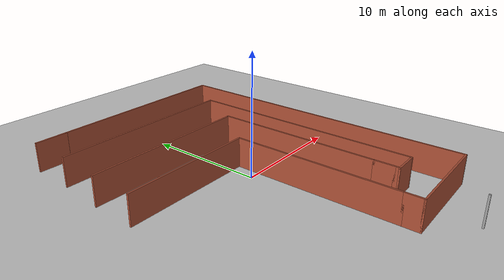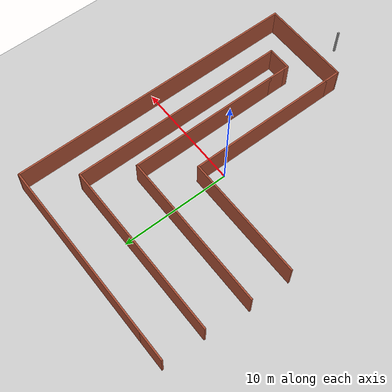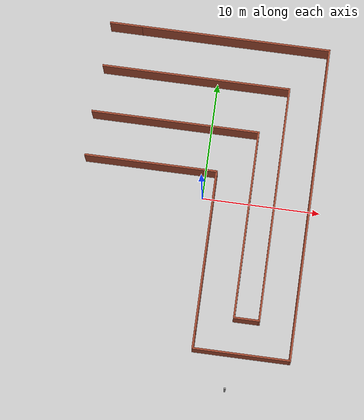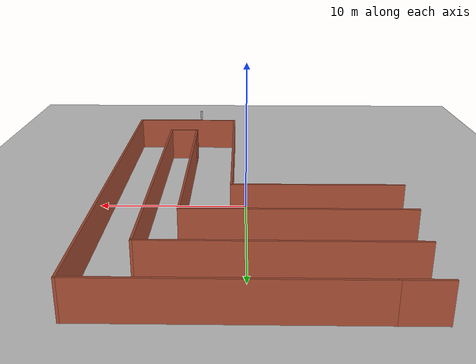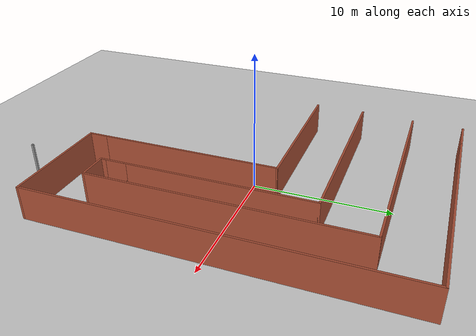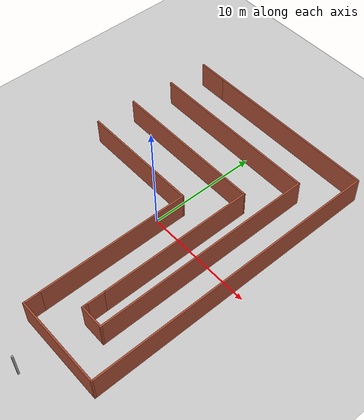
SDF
<sdf version="1.7">
 <world name="default">
  <light name="sun" type="directional">
   <pose>0 0 10 0 -0 0</pose>
   <diffuse>0.8 0.8 0.8 1</diffuse>
   <specular>0.2 0.2 0.2 1</specular>
   <attenuation>
    <range>1000</range>
    <constant>0.9</constant>
    <linear>0.01</linear>
    <quadratic>0.001</quadratic>
   </attenuation>
   <direction>-0.5 0.1 -0.9</direction>
   <spot><inner_angle>0</inner_angle><outer_angle>0</outer_angle><falloff>0</falloff></spot>
  </light>
  <model name="ground_plane">
   <static>1</static>
   <link name="link">
    <collision name="collision">
     <geometry><plane><normal>0 0 1</normal><size>100 100</size></plane></geometry>
     <surface><friction><ode><mu>100</mu><mu2>50</mu2></ode></friction></surface>
    </collision>
    <visual name="visual">
     <cast_shadows>0</cast_shadows>
     <geometry><plane><normal>0 0 1</normal><size>100 100</size></plane></geometry>
     <material>
      <script><uri>file://media/materials/scripts/gazebo.material</uri><name>Gazebo/Grey</name></script>
     </material>
    </visual>
   </link>
  </model>
  <gravity>0 0 -9.8</gravity>
  <magnetic_field>6e-06 2.3e-05 -4.2e-05</magnetic_field>
  <atmosphere type="adiabatic"/>
  <physics type="ode">
   <max_step_size>0.001</max_step_size>
   <real_time_factor>1</real_time_factor>
   <real_time_update_rate>1000</real_time_update_rate>
  </physics>
  <scene><ambient>0.4 0.4 0.4 1</ambient><background>0.7 0.7 0.7 1</background><shadows>1</shadows></scene>
  <audio><device>default</device></audio>
  <spherical_coordinates>
   <surface_model>EARTH_WGS84</surface_model>
   <latitude_deg>0</latitude_deg>
   <longitude_deg>0</longitude_deg>
   <elevation>0</elevation>
   <heading_deg>0</heading_deg>
  </spherical_coordinates>
  <model name="square_maze_world">
   <pose>-0.545233 -1.13978 0 0 0 -1.57096</pose>
   <link name="Wall_0">
    <collision name="Wall_0_Collision">
     <geometry><box><size>14.25 0.15 2.5</size></box></geometry>
     <pose>0 0 1.25 0 -0 0</pose>
    </collision>
    <visual name="Wall_0_Visual">
     <pose>0 0 1.25 0 -0 0</pose>
     <geometry><box><size>14.25 0.15 2.5</size></box></geometry>
     <material>
      <script><uri>file://media/materials/scripts/gazebo.material</uri><name>Gazebo/Bricks</name></script>
      <ambient>1 1 1 1</ambient>
     </material>
     <meta><layer>0</layer></meta>
    </visual>
    <pose>-6.92541 -2.48959 0 0 -0 1.5708</pose>
   </link>
   <link name="Wall_12">
    <collision name="Wall_12_Collision">
     <geometry><box><size>13.75 0.15 2.5</size></box></geometry>
     <pose>0 0 1.25 0 -0 0</pose>
    </collision>
    <visual name="Wall_12_Visual">
     <pose>0 0 1.25 0 -0 0</pose>
     <geometry><box><size>13.75 0.15 2.5</size></box></geometry>
     <material>
      <script><uri>file://media/materials/scripts/gazebo.material</uri><name>Gazebo/Bricks</name></script>
      <ambient>1 1 1 1</ambient>
     </material>
     <meta><layer>0</layer></meta>
    </visual>
    <pose>3.67541 1.5001 0 0 -0 0</pose>
   </link>
   <link name="Wall_14">
    <collision name="Wall_14_Collision">
     <geometry><box><size>1.5 0.15 2.5</size></box></geometry>
     <pose>0 0 1.25 0 -0 0</pose>
    </collision>
    <visual name="Wall_14_Visual">
     <pose>0 0 1.25 0 -0 0</pose>
     <geometry><box><size>1.5 0.15 2.5</size></box></geometry>
     <material>
      <script><uri>file://media/materials/scripts/gazebo.material</uri><name>Gazebo/Bricks</name></script>
      <ambient>1 1 1 1</ambient>
     </material>
     <meta><layer>0</layer></meta>
    </visual>
    <pose>11.1504 1.5001 0 0 -0 0</pose>
   </link>
   <link name="Wall_15">
    <collision name="Wall_15_Collision">
     <geometry><box><size>8.25 0.15 2.5</size></box></geometry>
     <pose>0 0 1.25 0 -0 0</pose>
    </collision>
    <visual name="Wall_15_Visual">
     <pose>0 0 1.25 0 -0 0</pose>
     <geometry><box><size>8.25 0.15 2.5</size></box></geometry>
     <material>
      <script><uri>file://media/materials/scripts/gazebo.material</uri><name>Gazebo/Bricks</name></script>
      <ambient>1 1 1 1</ambient>
     </material>
     <meta><layer>0</layer></meta>
    </visual>
    <pose>11.8254 5.5501 0 0 -0 1.5708</pose>
   </link>
   <link name="Wall_18">
    <collision name="Wall_18_Collision">
     <geometry><box><size>0.5 0.15 2.5</size></box></geometry>
     <pose>0 0 1.25 0 -0 0</pose>
    </collision>
    <visual name="Wall_18_Visual">
     <pose>0 0 1.25 0 -0 0</pose>
     <geometry><box><size>0.5 0.15 2.5</size></box></geometry>
     <material>
      <script><uri>file://media/materials/scripts/gazebo.material</uri><name>Gazebo/Bricks</name></script>
      <ambient>1 1 1 1</ambient>
     </material>
     <meta><layer>0</layer></meta>
    </visual>
    <pose>8.69959 4.56041 0 0 -0 0</pose>
   </link>
   <link name="Wall_19">
    <collision name="Wall_19_Collision">
     <geometry><box><size>2.25 0.15 2.5</size></box></geometry>
     <pose>0 0 1.25 0 -0 0</pose>
    </collision>
    <visual name="Wall_19_Visual">
     <pose>0 0 1.25 0 -0 0</pose>
     <geometry><box><size>2.25 0.15 2.5</size></box></geometry>
     <material>
      <script><uri>file://media/materials/scripts/gazebo.material</uri><name>Gazebo/Bricks</name></script>
      <ambient>1 1 1 1</ambient>
     </material>
     <meta><layer>0</layer></meta>
    </visual>
    <pose>8.87459 5.61041 0 0 -0 1.5708</pose>
   </link>
   <link name="Wall_2">
    <collision name="Wall_2_Collision">
     <geometry><box><size>11.2501 0.15 2.5</size></box></geometry>
     <pose>0 0 1.25 0 -0 0</pose>
    </collision>
    <visual name="Wall_2_Visual">
     <pose>0 0 1.25 0 -0 0</pose>
     <geometry><box><size>11.2501 0.15 2.5</size></box></geometry>
     <material>
      <script><uri>file://media/materials/scripts/gazebo.material</uri><name>Gazebo/Bricks</name></script>
      <ambient>1 1 1 1</ambient>
     </material>
     <meta><layer>0</layer></meta>
    </visual>
    <pose>-3.13616 -4.0499 0 0 -0 1.57288</pose>
   </link>
   <link name="Wall_21">
    <collision name="Wall_21_Collision">
     <geometry><box><size>26.75 0.15 2.5</size></box></geometry>
     <pose>0 0 1.25 0 -0 0</pose>
    </collision>
    <visual name="Wall_21_Visual">
     <pose>0 0 1.25 0 -0 0</pose>
     <geometry><box><size>26.75 0.15 2.5</size></box></geometry>
     <material>
      <script><uri>file://media/materials/scripts/gazebo.material</uri><name>Gazebo/Bricks</name></script>
      <ambient>1 1 1 1</ambient>
     </material>
     <meta><layer>0</layer></meta>
    </visual>
    <pose>-1.47459 9.6001 0 0 -0 3.14159</pose>
   </link>
   <link name="Wall_23">
    <collision name="Wall_23_Collision">
     <geometry><box><size>20 0.15 2.5</size></box></geometry>
     <pose>0 0 1.25 0 -0 0</pose>
    </collision>
    <visual name="Wall_23_Visual">
     <pose>0 0 1.25 0 -0 0</pose>
     <geometry><box><size>20 0.15 2.5</size></box></geometry>
     <material>
      <script><uri>file://media/materials/scripts/gazebo.material</uri><name>Gazebo/Bricks</name></script>
      <ambient>1 1 1 1</ambient>
     </material>
     <meta><layer>0</layer></meta>
    </visual>
    <pose>-1.05041 6.66041 0 0 -0 3.14159</pose>
   </link>
   <link name="Wall_24">
    <collision name="Wall_24_Collision">
     <geometry><box><size>16 0.15 2.5</size></box></geometry>
     <pose>0 0 1.25 0 -0 0</pose>
    </collision>
    <visual name="Wall_24_Visual">
     <pose>0 0 1.25 0 -0 0</pose>
     <geometry><box><size>16 0.15 2.5</size></box></geometry>
     <material>
      <script><uri>file://media/materials/scripts/gazebo.material</uri><name>Gazebo/Bricks</name></script>
      <ambient>1 1 1 1</ambient>
     </material>
     <meta><layer>0</layer></meta>
    </visual>
    <pose>-10.9754 -1.26459 0 0 -0 -1.5708</pose>
   </link>
   <link name="Wall_26">
    <collision name="Wall_26_Collision">
     <geometry><box><size>16.25 0.15 2.5</size></box></geometry>
     <pose>0 0 1.25 0 -0 0</pose>
    </collision>
    <visual name="Wall_26_Visual">
     <pose>0 0 1.25 0 -0 0</pose>
     <geometry><box><size>16.25 0.15 2.5</size></box></geometry>
     <material>
      <script><uri>file://media/materials/scripts/gazebo.material</uri><name>Gazebo/Bricks</name></script>
      <ambient>1 1 1 1</ambient>
     </material>
     <meta><layer>0</layer></meta>
    </visual>
    <pose>-14.7746 1.5501 0 0 -0 -1.5708</pose>
   </link>
   <link name="Wall_27">
    <collision name="Wall_27_Collision">
     <geometry><box><size>2.75 0.15 2.5</size></box></geometry>
     <pose>0 0 1.25 0 -0 0</pose>
    </collision>
    <visual name="Wall_27_Visual">
     <pose>0 0 1.25 0 -0 0</pose>
     <geometry><box><size>2.75 0.15 2.5</size></box></geometry>
     <material>
      <script><uri>file://media/materials/scripts/gazebo.material</uri><name>Gazebo/Bricks</name></script>
      <ambient>1 1 1 1</ambient>
     </material>
     <meta><layer>0</layer></meta>
    </visual>
    <pose>-14.7746 -7.7999 0 0 -0 -1.5708</pose>
   </link>
   <link name="Wall_4">
    <collision name="Wall_4_Collision">
     <geometry><box><size>14 0.15 2.5</size></box></geometry>
     <pose>0 0 1.25 0 -0 0</pose>
    </collision>
    <visual name="Wall_4_Visual">
     <pose>0 0 1.25 0 -0 0</pose>
     <geometry><box><size>14 0.15 2.5</size></box></geometry>
     <material>
      <script><uri>file://media/materials/scripts/gazebo.material</uri><name>Gazebo/Bricks</name></script>
      <ambient>1 1 1 1</ambient>
     </material>
     <meta><layer>0</layer></meta>
    </visual>
    <pose>-0.000408 4.56041 0 0 -0 0</pose>
   </link>
   <link name="Wall_5">
    <collision name="Wall_5_Collision">
     <geometry><box><size>1.75 0.15 2.5</size></box></geometry>
     <pose>0 0 1.25 0 -0 0</pose>
    </collision>
    <visual name="Wall_5_Visual">
     <pose>0 0 1.25 0 -0 0</pose>
     <geometry><box><size>1.75 0.15 2.5</size></box></geometry>
     <material>
      <script><uri>file://media/materials/scripts/gazebo.material</uri><name>Gazebo/Bricks</name></script>
      <ambient>1 1 1 1</ambient>
     </material>
     <meta><layer>0</layer></meta>
    </visual>
    <pose>7.72459 4.56041 0 0 -0 0</pose>
   </link>
   <link name="Wall_8">
    <collision name="Wall_8_Collision">
     <geometry><box><size>0.15 0.15 2.5</size></box></geometry>
     <pose>0 0 1.25 0 -0 0</pose>
    </collision>
    <visual name="Wall_8_Visual">
     <pose>0 0 1.25 0 -0 0</pose>
     <geometry><box><size>0.15 0.15 2.5</size></box></geometry>
     <material>
      <script><uri>file://media/materials/scripts/gazebo.material</uri><name>Gazebo/Grey</name></script>
      <ambient>1 1 1 1</ambient>
     </material>
     <meta><layer>0</layer></meta>
    </visual>
    <pose>14.7746 4.56041 0 0 -0 0</pose>
   </link>
   <static>1</static>
  </model>
 </world>
</sdf>
